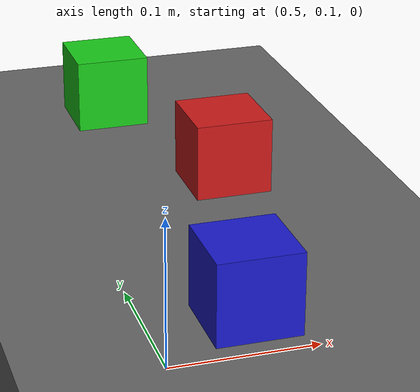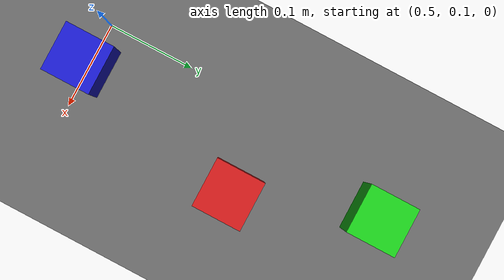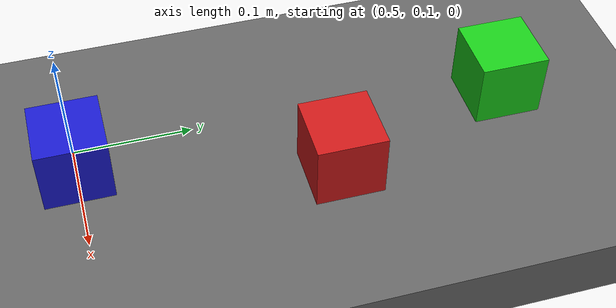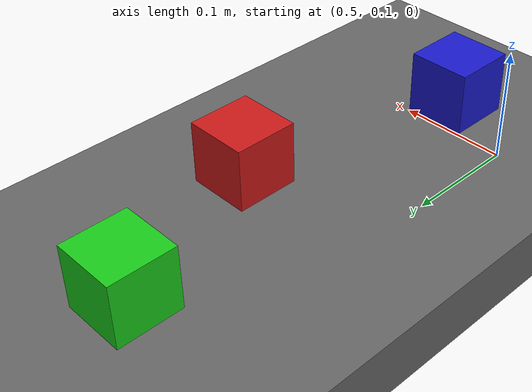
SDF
<sdf version='1.7'>
  <world name='default'>
    <plugin
      filename="gz-sim-physics-system"
      name="gz::sim::systems::Physics">
    </plugin>
    <plugin
      filename="gz-sim-user-commands-system"
      name="gz::sim::systems::UserCommands">
    </plugin>
    <plugin
      filename="gz-sim-scene-broadcaster-system"
      name="gz::sim::systems::SceneBroadcaster">
    </plugin>
    <plugin
      filename="gz-sim-sensors-system"
      name="gz::sim::systems::Sensors">
      <render_engine>ogre2</render_engine>
    </plugin>

    <gui fullscreen="0">
      <plugin filename="GzScene3D" name="3D View">
        <ignition-gui>
          <title>3D View</title>
          <property type="bool" key="showTitleBar">false</property>
          <property type="string" key="state">docked</property>
        </ignition-gui>
        <engine>ogre2</engine>
        <scene>scene</scene>
        <ambient_light>0.4 0.4 0.4</ambient_light>
        <background_color>0.8 0.8 0.8</background_color>
        <camera_pose>1.5 0 1.2 0 0.5 3.14</camera_pose>
      </plugin>

      <plugin filename="WorldControl" name="World control">
        <ignition-gui>
          <title>World control</title>
          <property type="bool" key="showTitleBar">false</property>
          <property type="bool" key="resizable">false</property>
          <property type="double" key="height">72</property>
          <property type="double" key="width">121</property>
          <property type="double" key="z">1</property>
          <property type="string" key="state">floating</property>
          <anchors target="3D View">
            <line own="left" target="left"/>
            <line own="bottom" target="bottom"/>
          </anchors>
        </ignition-gui>
        <play_pause>true</play_pause>
        <step>true</step>
        <start_paused>true</start_paused>
      </plugin>

      <plugin filename="WorldStats" name="World stats">
        <ignition-gui>
          <title>World stats</title>
          <property type="bool" key="showTitleBar">false</property>
          <property type="bool" key="resizable">false</property>
          <property type="double" key="height">110</property>
          <property type="double" key="width">290</property>
          <property type="double" key="z">1</property>
          <property type="string" key="state">floating</property>
          <anchors target="3D View">
            <line own="right" target="right"/>
            <line own="bottom" target="bottom"/>
          </anchors>
        </ignition-gui>
        <sim_time>true</sim_time>
        <real_time>true</real_time>
        <real_time_factor>true</real_time_factor>
        <iterations>true</iterations>
      </plugin>

      <plugin filename="EntityTree" name="Entity tree">
        <ignition-gui>
          <property type="string" key="state">docked</property>
        </ignition-gui>
      </plugin>

    <plugin filename="TransformControl" name="Transform control">
        <ignition-gui>
          <title>Transform control</title>
          <property type="bool" key="showTitleBar">false</property>
          <property type="double" key="height">50</property>
          <property type="double" key="width">250</property>
          <property type="double" key="z">1</property>
          <property type="string" key="state">floating</property>
          <anchors target="3D View">
            <line own="top" target="top"/>
            <line own="left" target="left"/>
          </anchors>
        </ignition-gui>
      </plugin>

    <plugin filename="ComponentInspector" name="Component inspector">
        <ignition-gui>
          <property type="string" key="state">docked</property>
        </ignition-gui>
      </plugin>
    </gui>

    <light name='sun' type='directional'>
      <cast_shadows>0</cast_shadows>
      <pose>0 0 10 0 0 0</pose>
      <diffuse>0.4 0.4 0.4 1</diffuse>
      <specular>0.1 0.1 0.1 1</specular>
      <attenuation>
        <range>500</range>
        <constant>0.8</constant>
        <linear>0.02</linear>
        <quadratic>0.001</quadratic>
      </attenuation>
      <direction>0 0 -0.9</direction>
    </light>

    <physics type='ode'>
      <max_step_size>0.01</max_step_size>
      <real_time_factor>1</real_time_factor>
      <real_time_update_rate>100</real_time_update_rate>
    </physics>

    <gravity>0 0 -9.81</gravity>

    <!-- Table -->
    <model name="table">
      <static>true</static>
      <pose>0 0 0 0 0 0</pose>
      <!-- Table top -->
      <link name="table_top">
        <pose>0 0 0 0 0 0</pose>
        <collision name="collision">
          <geometry>
            <box>
              <size>3 3 0.05</size>
            </box>
          </geometry>
        </collision>
        <visual name="visual">
          <geometry>
            <box>
              <size>3 3 0.05</size>
            </box>
          </geometry>
          <material>
            <ambient>0.4 0.4 0.4 1</ambient>
            <diffuse>0.4 0.4 0.4 1</diffuse>
            <specular>0.1 0.1 0.5 1</specular>
          </material>
        </visual>
      </link>
    </model>

    <model name="blue_box">
      <pose>0.55 0.1 0.0525 0 0 0</pose>
      <plugin filename="gz-sim-pose-publisher-system"
              name="gz::sim::systems::PosePublisher">
        <publish_link_pose>false</publish_link_pose>
        <publish_model_pose>true</publish_model_pose>
        <update_frequency>60</update_frequency>
      </plugin>
      <link name="link">
        <inertial>
          <mass>0.1</mass>
          <inertia>
            <!-- cube 0.055^3, m=0.1: I = m/12 * 2*0.055^2 = 5.04e-5 -->
            <ixx>0.00005042</ixx>
            <ixy>0</ixy>
            <ixz>0</ixz>
            <iyy>0.00005042</iyy>
            <iyz>0</iyz>
            <izz>0.00005042</izz>
          </inertia>
        </inertial>
        <collision name="collision">
          <geometry>
            <box>
              <size>0.055 0.055 0.055</size>
            </box>
          </geometry>
          <surface>
            <friction>
              <ode>
                <mu>50.0</mu>
                <mu2>50.0</mu2>
              </ode>
            </friction>
          </surface>
        </collision>
        <visual name="visual">
          <geometry>
            <box>
              <size>0.055 0.055 0.055</size>
            </box>
          </geometry>
          <material>
            <ambient>0.1 0.1 0.8 1</ambient>
            <diffuse>0.1 0.1 0.8 1</diffuse>
            <specular>0.1 0.1 0.8 1</specular>
          </material>
        </visual>
      </link>
    </model>

    <model name="red_box">
      <pose>0.6 0.3 0.0525 0 0 0</pose>
      <plugin filename="gz-sim-pose-publisher-system"
              name="gz::sim::systems::PosePublisher">
        <publish_link_pose>false</publish_link_pose>
        <publish_model_pose>true</publish_model_pose>
        <update_frequency>60</update_frequency>
      </plugin>
      <link name="link">
        <inertial>
          <mass>0.1</mass>
          <inertia>
            <!-- cube 0.055^3, m=0.1: I = m/12 * 2*0.055^2 = 5.04e-5 -->
            <ixx>0.00005042</ixx>
            <ixy>0</ixy>
            <ixz>0</ixz>
            <iyy>0.00005042</iyy>
            <iyz>0</iyz>
            <izz>0.00005042</izz>
          </inertia>
        </inertial>
        <collision name="collision">
          <geometry>
            <box>
              <size>0.055 0.055 0.055</size>
            </box>
          </geometry>
          <surface>
            <friction>
              <ode>
                <mu>50.0</mu>
                <mu2>50.0</mu2>
              </ode>
            </friction>
          </surface>
        </collision>
        <visual name="visual">
          <geometry>
            <box>
              <size>0.055 0.055 0.055</size>
            </box>
          </geometry>
          <material>
            <ambient>0.8 0.1 0.1 1</ambient>
            <diffuse>0.8 0.1 0.1 1</diffuse>
            <specular>0.8 0.1 0.1 1</specular>
          </material>
        </visual>
      </link>
    </model>

    <model name="green_box">
      <pose>0.55 0.45 0.0525 0 0 0</pose>
      <plugin filename="gz-sim-pose-publisher-system"
              name="gz::sim::systems::PosePublisher">
        <publish_link_pose>false</publish_link_pose>
        <publish_model_pose>true</publish_model_pose>
        <update_frequency>60</update_frequency>
      </plugin>
      <link name="link">
        <inertial>
          <mass>0.1</mass>
          <inertia>
            <!-- cube 0.055^3, m=0.1: I = m/12 * 2*0.055^2 = 5.04e-5 -->
            <ixx>0.00005042</ixx>
            <ixy>0</ixy>
            <ixz>0</ixz>
            <iyy>0.00005042</iyy>
            <iyz>0</iyz>
            <izz>0.00005042</izz>
          </inertia>
        </inertial>
        <collision name="collision">
          <geometry>
            <box>
              <size>0.055 0.055 0.055</size>
            </box>
          </geometry>
          <surface>
            <friction>
              <ode>
                <mu>50.0</mu>
                <mu2>50.0</mu2>
              </ode>
            </friction>
          </surface>
        </collision>
        <visual name="visual">
          <geometry>
            <box>
              <size>0.055 0.055 0.055</size>
            </box>
          </geometry>
          <material>
            <ambient>0.1 0.8 0.1 1</ambient>
            <diffuse>0.1 0.8 0.1 1</diffuse>
            <specular>0.1 0.8 0.1 1</specular>
          </material>
        </visual>
      </link>
    </model>

  </world>
</sdf>
